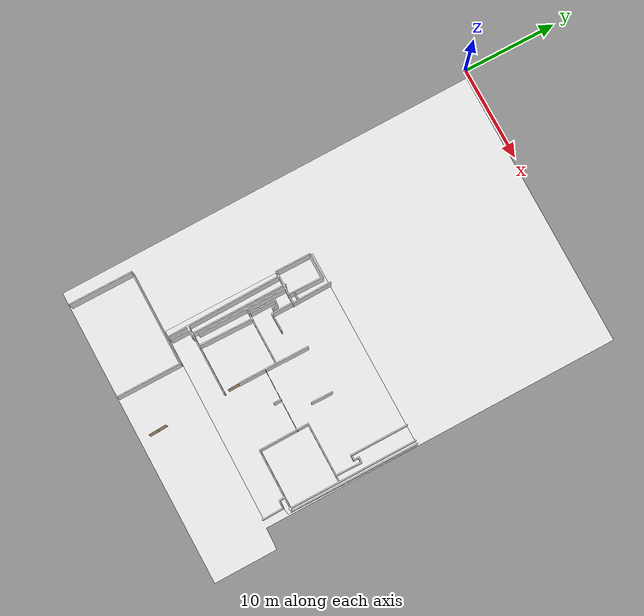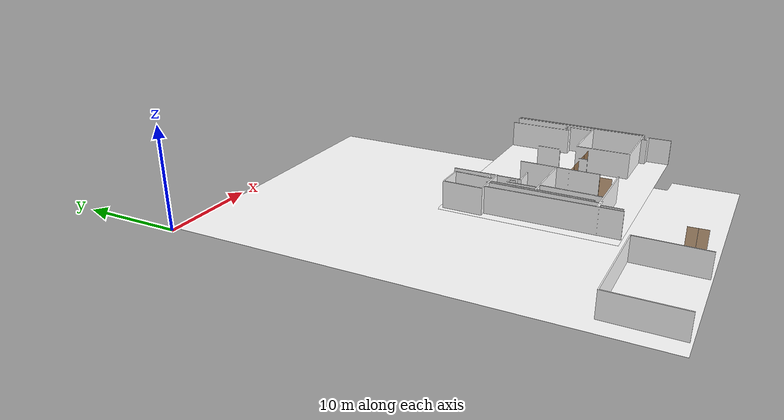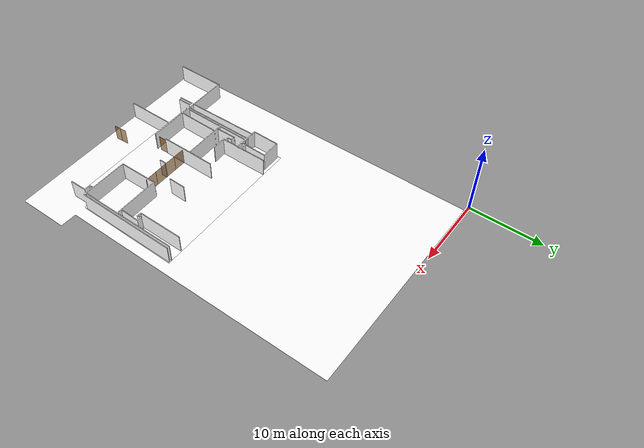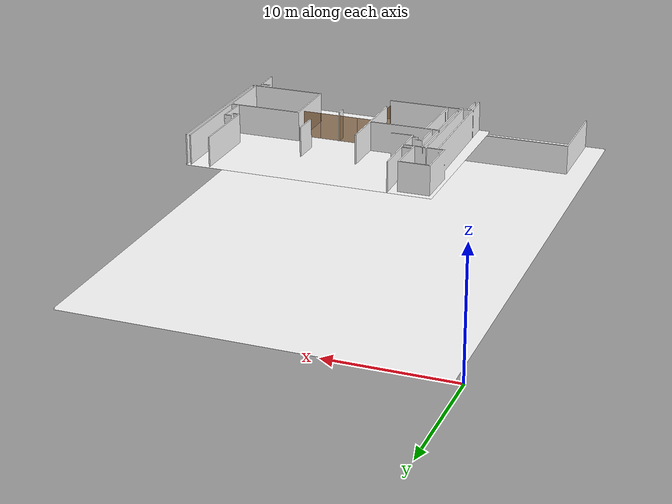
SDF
<sdf version="1.7">
 <world name="sim_world">
  <physics name="10ms" type="ode">
   <max_step_size>0.01</max_step_size>
   <real_time_factor>1.0</real_time_factor>
  </physics>
  <plugin filename="gz-sim-physics-system" name="gz::sim::systems::Physics"/>
  <plugin filename="gz-sim-user-commands-system" name="gz::sim::systems::UserCommands"/>
  <plugin filename="gz-sim-scene-broadcaster-system" name="gz::sim::systems::SceneBroadcaster"/>
  <plugin filename="libdoor.so" name="door"/>
  <plugin filename="liblift.so" name="lift"/>
  <scene><ambient>1 1 1</ambient><background>0.8 0.8 0.8</background><grid>false</grid></scene>
  <include><name>floor_L1_instance</name><uri>model://vamoaver_L1</uri></include>
  <include><name>floor_L2_instance</name><uri>model://vamoaver_L2</uri><pose>0 0 3.0 0 0 0</pose></include>
  <light type="directional" name="sun">
   <pose>0 0 10 0 0 0</pose>
   <diffuse>1 1 1 1</diffuse>
   <specular>0.2 0.2 0.2 1</specular>
   <attenuation>
    <range>1000</range>
    <constant>0.09</constant>
    <linear>0.001</linear>
    <quadratic>0.001</quadratic>
   </attenuation>
   <direction>-0.5 0.1 -0.9</direction>
  </light>
  <model name="pd">
   <pose>22.239033747237585 -31.30326909769599 0.0 0 0 3.1330106389548487</pose>
   <link name="right">
    <pose>0.7583227794030974 0 1.11 0 0 0</pose>
    <visual name="right_visual">
     <geometry><box><size>1.5066455588061949 0.03 2.2</size></box></geometry>
     <material>
      <ambient>0.5 0.25 0 0.6</ambient>
      <diffuse>0.5 0.25 0 0.6</diffuse>
      <pbr><metal><metalness>0.0</metalness></metal></pbr>
     </material>
    </visual>
    <collision name="right_collision">
     <geometry><box><size>1.5066455588061949 0.03 2.2</size></box></geometry>
     <surface><contact><collide_bitmask>0x02</collide_bitmask></contact></surface>
    </collision>
    <inertial>
     <mass>50.0</mass>
     <inertia><ixx>20.17041666666667</ixx><iyy>29.624920166126802</iyy><izz>9.462003499460131</izz></inertia>
    </inertial>
   </link>
   <joint name="right_joint" type="revolute">
    <parent>world</parent>
    <child>right</child>
    <axis><xyz>0 0 -1</xyz><limit><lower>0</lower><upper>1.57</upper></limit></axis>
    <pose>0.7583227794030974 0 0 0 0 0</pose>
   </joint>
   <link name="left">
    <pose>-0.7583227794030974 0 1.11 0 0 0</pose>
    <visual name="left_visual">
     <geometry><box><size>1.5066455588061949 0.03 2.2</size></box></geometry>
     <material>
      <ambient>0.5 0.25 0 0.6</ambient>
      <diffuse>0.5 0.25 0 0.6</diffuse>
      <pbr><metal><metalness>0.0</metalness></metal></pbr>
     </material>
    </visual>
    <collision name="left_collision">
     <geometry><box><size>1.5066455588061949 0.03 2.2</size></box></geometry>
     <surface><contact><collide_bitmask>0x02</collide_bitmask></contact></surface>
    </collision>
    <inertial>
     <mass>50.0</mass>
     <inertia><ixx>20.17041666666667</ixx><iyy>29.624920166126802</iyy><izz>9.462003499460131</izz></inertia>
    </inertial>
   </link>
   <joint name="left_joint" type="revolute">
    <parent>world</parent>
    <child>left</child>
    <axis><xyz>0 0 -1</xyz><limit><lower>-1.57</lower><upper>0</upper></limit></axis>
    <pose>-0.7583227794030974 0 0 0 0 0</pose>
   </joint>
   <plugin name="register_component" filename="libregister_component.so">
    <component name="Door">
     <v_max_door>0.5</v_max_door>
     <a_max_door>0.3</a_max_door>
     <a_nom_door>0.15</a_nom_door>
     <dx_min_door>0.01</dx_min_door>
     <f_max_door>500.0</f_max_door>
     <ros_interface>true</ros_interface>
     <door name="pd" type="DoubleSwingDoor" left_joint_name="left_joint" right_joint_name="right_joint"/>
    </component>
   </plugin>
  </model>
  <model name="pe">
   <pose>19.059718336665608 -31.292579740426334 0.0 0 0 -3.1261976318779796</pose>
   <link name="right">
    <pose>0.7699244835898825 0 1.11 0 0 0</pose>
    <visual name="right_visual">
     <geometry><box><size>1.529848967179765 0.03 2.2</size></box></geometry>
     <material>
      <ambient>0.5 0.25 0 0.6</ambient>
      <diffuse>0.5 0.25 0 0.6</diffuse>
      <pbr><metal><metalness>0.0</metalness></metal></pbr>
     </material>
    </visual>
    <collision name="right_collision">
     <geometry><box><size>1.529848967179765 0.03 2.2</size></box></geometry>
     <surface><contact><collide_bitmask>0x02</collide_bitmask></contact></surface>
    </collision>
    <inertial>
     <mass>50.0</mass>
     <inertia><ixx>20.17041666666667</ixx><iyy>29.918491093254147</iyy><izz>9.755574426587476</izz></inertia>
    </inertial>
   </link>
   <joint name="right_joint" type="revolute">
    <parent>world</parent>
    <child>right</child>
    <axis><xyz>0 0 -1</xyz><limit><lower>0</lower><upper>1.57</upper></limit></axis>
    <pose>0.7699244835898825 0 0 0 0 0</pose>
   </joint>
   <link name="left">
    <pose>-0.7699244835898825 0 1.11 0 0 0</pose>
    <visual name="left_visual">
     <geometry><box><size>1.529848967179765 0.03 2.2</size></box></geometry>
     <material>
      <ambient>0.5 0.25 0 0.6</ambient>
      <diffuse>0.5 0.25 0 0.6</diffuse>
      <pbr><metal><metalness>0.0</metalness></metal></pbr>
     </material>
    </visual>
    <collision name="left_collision">
     <geometry><box><size>1.529848967179765 0.03 2.2</size></box></geometry>
     <surface><contact><collide_bitmask>0x02</collide_bitmask></contact></surface>
    </collision>
    <inertial>
     <mass>50.0</mass>
     <inertia><ixx>20.17041666666667</ixx><iyy>29.918491093254147</iyy><izz>9.755574426587476</izz></inertia>
    </inertial>
   </link>
   <joint name="left_joint" type="revolute">
    <parent>world</parent>
    <child>left</child>
    <axis><xyz>0 0 -1</xyz><limit><lower>-1.57</lower><upper>0</upper></limit></axis>
    <pose>-0.7699244835898825 0 0 0 0 0</pose>
   </joint>
   <plugin name="register_component" filename="libregister_component.so">
    <component name="Door">
     <v_max_door>0.5</v_max_door>
     <a_max_door>0.3</a_max_door>
     <a_nom_door>0.15</a_nom_door>
     <dx_min_door>0.01</dx_min_door>
     <f_max_door>500.0</f_max_door>
     <ros_interface>true</ros_interface>
     <door name="pe" type="DoubleSwingDoor" left_joint_name="left_joint" right_joint_name="right_joint"/>
    </component>
   </plugin>
  </model>
  <model name="pf">
   <pose>17.344819400970803 -42.95994103223671 0.0 0 0 -1.521286940058024</pose>
   <link name="right">
    <pose>0.4655277544687605 0 1.11 0 0 0</pose>
    <visual name="right_visual">
     <geometry><box><size>0.921055508937521 0.03 2.2</size></box></geometry>
     <material>
      <ambient>0.5 0.25 0 0.6</ambient>
      <diffuse>0.5 0.25 0 0.6</diffuse>
      <pbr><metal><metalness>0.0</metalness></metal></pbr>
     </material>
    </visual>
    <collision name="right_collision">
     <geometry><box><size>0.921055508937521 0.03 2.2</size></box></geometry>
     <surface><contact><collide_bitmask>0x02</collide_bitmask></contact></surface>
    </collision>
    <inertial>
     <mass>50.0</mass>
     <inertia><ixx>20.17041666666667</ixx><iyy>23.701430210600655</iyy><izz>3.5385135439339828</izz></inertia>
    </inertial>
   </link>
   <joint name="right_joint" type="revolute">
    <parent>world</parent>
    <child>right</child>
    <axis><xyz>0 0 -1</xyz><limit><lower>0</lower><upper>1.57</upper></limit></axis>
    <pose>0.4655277544687605 0 0 0 0 0</pose>
   </joint>
   <link name="left">
    <pose>-0.4655277544687605 0 1.11 0 0 0</pose>
    <visual name="left_visual">
     <geometry><box><size>0.921055508937521 0.03 2.2</size></box></geometry>
     <material>
      <ambient>0.5 0.25 0 0.6</ambient>
      <diffuse>0.5 0.25 0 0.6</diffuse>
      <pbr><metal><metalness>0.0</metalness></metal></pbr>
     </material>
    </visual>
    <collision name="left_collision">
     <geometry><box><size>0.921055508937521 0.03 2.2</size></box></geometry>
     <surface><contact><collide_bitmask>0x02</collide_bitmask></contact></surface>
    </collision>
    <inertial>
     <mass>50.0</mass>
     <inertia><ixx>20.17041666666667</ixx><iyy>23.701430210600655</iyy><izz>3.5385135439339828</izz></inertia>
    </inertial>
   </link>
   <joint name="left_joint" type="revolute">
    <parent>world</parent>
    <child>left</child>
    <axis><xyz>0 0 -1</xyz><limit><lower>-1.57</lower><upper>0</upper></limit></axis>
    <pose>-0.4655277544687605 0 0 0 0 0</pose>
   </joint>
   <plugin name="register_component" filename="libregister_component.so">
    <component name="Door">
     <v_max_door>0.5</v_max_door>
     <a_max_door>0.3</a_max_door>
     <a_nom_door>0.15</a_nom_door>
     <dx_min_door>0.01</dx_min_door>
     <f_max_door>500.0</f_max_door>
     <ros_interface>true</ros_interface>
     <door name="pf" type="DoubleSwingDoor" left_joint_name="left_joint" right_joint_name="right_joint"/>
    </component>
   </plugin>
  </model>
  <model name="pg">
   <pose>17.475961428283842 -34.64126924803753 0.0 0 0 -1.544138977263344</pose>
   <link name="right">
    <pose>0 0 1.11 0 0 0</pose>
    <visual name="right_visual">
     <geometry><box><size>1.1220816652032701 0.03 2.2</size></box></geometry>
     <material>
      <ambient>0.5 0.25 0 0.6</ambient>
      <diffuse>0.5 0.25 0 0.6</diffuse>
      <pbr><metal><metalness>0.0</metalness></metal></pbr>
     </material>
    </visual>
    <collision name="right_collision">
     <geometry><box><size>1.1220816652032701 0.03 2.2</size></box></geometry>
     <surface><contact><collide_bitmask>0x02</collide_bitmask></contact></surface>
    </collision>
    <inertial>
     <mass>50.0</mass>
     <inertia><ixx>20.17041666666667</ixx><iyy>25.412780264105603</iyy><izz>5.249863597438932</izz></inertia>
    </inertial>
   </link>
   <joint name="right_joint" type="revolute">
    <parent>world</parent>
    <child>right</child>
    <axis><xyz>0 0 1</xyz><limit><lower>0</lower><upper>1.57</upper></limit></axis>
    <pose>0.5660408326016351 0 0 0 0 0</pose>
   </joint>
   <plugin name="register_component" filename="libregister_component.so">
    <component name="Door">
     <v_max_door>0.5</v_max_door>
     <a_max_door>0.3</a_max_door>
     <a_nom_door>0.15</a_nom_door>
     <dx_min_door>0.01</dx_min_door>
     <f_max_door>500.0</f_max_door>
     <ros_interface>true</ros_interface>
     <door name="pg" type="SwingDoor" left_joint_name="empty_joint" right_joint_name="right_joint"/>
    </component>
   </plugin>
  </model>
  <model name="pa">
   <pose>22.259642353104866 -31.367903908425042 3.0 0 0 3.139880470327144</pose>
   <link name="right">
    <pose>0.823672234476166 0 1.11 0 0 0</pose>
    <visual name="right_visual">
     <geometry><box><size>1.637344468952332 0.03 2.2</size></box></geometry>
     <material>
      <ambient>0.5 0.25 0 0.6</ambient>
      <diffuse>0.5 0.25 0 0.6</diffuse>
      <pbr><metal><metalness>0.0</metalness></metal></pbr>
     </material>
    </visual>
    <collision name="right_collision">
     <geometry><box><size>1.637344468952332 0.03 2.2</size></box></geometry>
     <surface><contact><collide_bitmask>0x02</collide_bitmask></contact></surface>
    </collision>
    <inertial>
     <mass>50.0</mass>
     <inertia><ixx>20.17041666666667</ixx><iyy>31.337070458369983</iyy><izz>11.174153791703311</izz></inertia>
    </inertial>
   </link>
   <joint name="right_joint" type="revolute">
    <parent>world</parent>
    <child>right</child>
    <axis><xyz>0 0 -1</xyz><limit><lower>0</lower><upper>1.57</upper></limit></axis>
    <pose>0.823672234476166 0 0 0 0 0</pose>
   </joint>
   <link name="left">
    <pose>-0.823672234476166 0 1.11 0 0 0</pose>
    <visual name="left_visual">
     <geometry><box><size>1.637344468952332 0.03 2.2</size></box></geometry>
     <material>
      <ambient>0.5 0.25 0 0.6</ambient>
      <diffuse>0.5 0.25 0 0.6</diffuse>
      <pbr><metal><metalness>0.0</metalness></metal></pbr>
     </material>
    </visual>
    <collision name="left_collision">
     <geometry><box><size>1.637344468952332 0.03 2.2</size></box></geometry>
     <surface><contact><collide_bitmask>0x02</collide_bitmask></contact></surface>
    </collision>
    <inertial>
     <mass>50.0</mass>
     <inertia><ixx>20.17041666666667</ixx><iyy>31.337070458369983</iyy><izz>11.174153791703311</izz></inertia>
    </inertial>
   </link>
   <joint name="left_joint" type="revolute">
    <parent>world</parent>
    <child>left</child>
    <axis><xyz>0 0 -1</xyz><limit><lower>-1.57</lower><upper>0</upper></limit></axis>
    <pose>-0.823672234476166 0 0 0 0 0</pose>
   </joint>
   <plugin name="register_component" filename="libregister_component.so">
    <component name="Door">
     <v_max_door>0.5</v_max_door>
     <a_max_door>0.3</a_max_door>
     <a_nom_door>0.15</a_nom_door>
     <dx_min_door>0.01</dx_min_door>
     <f_max_door>500.0</f_max_door>
     <ros_interface>true</ros_interface>
     <door name="pa" type="DoubleSwingDoor" left_joint_name="left_joint" right_joint_name="right_joint"/>
    </component>
   </plugin>
  </model>
  <model name="pb">
   <pose>17.459700466782632 -34.681898617500565 3.0 0 0 -1.553469970732994</pose>
   <link name="right">
    <pose>0 0 1.11 0 0 0</pose>
    <visual name="right_visual">
     <geometry><box><size>1.1367853899503078 0.03 2.2</size></box></geometry>
     <material>
      <ambient>0.5 0.25 0 0.6</ambient>
      <diffuse>0.5 0.25 0 0.6</diffuse>
      <pbr><metal><metalness>0.0</metalness></metal></pbr>
     </material>
    </visual>
    <collision name="right_collision">
     <geometry><box><size>1.1367853899503078 0.03 2.2</size></box></geometry>
     <surface><contact><collide_bitmask>0x02</collide_bitmask></contact></surface>
    </collision>
    <inertial>
     <mass>50.0</mass>
     <inertia><ixx>20.17041666666667</ixx><iyy>25.551170928351976</iyy><izz>5.388254261685305</izz></inertia>
    </inertial>
   </link>
   <joint name="right_joint" type="revolute">
    <parent>world</parent>
    <child>right</child>
    <axis><xyz>0 0 1</xyz><limit><lower>0</lower><upper>1.57</upper></limit></axis>
    <pose>0.5733926949751539 0 0 0 0 0</pose>
   </joint>
   <plugin name="register_component" filename="libregister_component.so">
    <component name="Door">
     <v_max_door>0.5</v_max_door>
     <a_max_door>0.3</a_max_door>
     <a_nom_door>0.15</a_nom_door>
     <dx_min_door>0.01</dx_min_door>
     <f_max_door>500.0</f_max_door>
     <ros_interface>true</ros_interface>
     <door name="pb" type="SwingDoor" left_joint_name="empty_joint" right_joint_name="right_joint"/>
    </component>
   </plugin>
  </model>
  <model name="pc">
   <pose>19.02371584225125 -31.350121255122694 3.0 0 0 3.132174421783648</pose>
   <link name="right">
    <pose>0.7943274576670907 0 1.11 0 0 0</pose>
    <visual name="right_visual">
     <geometry><box><size>1.5786549153341813 0.03 2.2</size></box></geometry>
     <material>
      <ambient>0.5 0.25 0 0.6</ambient>
      <diffuse>0.5 0.25 0 0.6</diffuse>
      <pbr><metal><metalness>0.0</metalness></metal></pbr>
     </material>
    </visual>
    <collision name="right_collision">
     <geometry><box><size>1.5786549153341813 0.03 2.2</size></box></geometry>
     <surface><contact><collide_bitmask>0x02</collide_bitmask></contact></surface>
    </collision>
    <inertial>
     <mass>50.0</mass>
     <inertia><ixx>20.17041666666667</ixx><iyy>30.55063059045322</iyy><izz>10.387713923786547</izz></inertia>
    </inertial>
   </link>
   <joint name="right_joint" type="revolute">
    <parent>world</parent>
    <child>right</child>
    <axis><xyz>0 0 -1</xyz><limit><lower>0</lower><upper>1.57</upper></limit></axis>
    <pose>0.7943274576670907 0 0 0 0 0</pose>
   </joint>
   <link name="left">
    <pose>-0.7943274576670907 0 1.11 0 0 0</pose>
    <visual name="left_visual">
     <geometry><box><size>1.5786549153341813 0.03 2.2</size></box></geometry>
     <material>
      <ambient>0.5 0.25 0 0.6</ambient>
      <diffuse>0.5 0.25 0 0.6</diffuse>
      <pbr><metal><metalness>0.0</metalness></metal></pbr>
     </material>
    </visual>
    <collision name="left_collision">
     <geometry><box><size>1.5786549153341813 0.03 2.2</size></box></geometry>
     <surface><contact><collide_bitmask>0x02</collide_bitmask></contact></surface>
    </collision>
    <inertial>
     <mass>50.0</mass>
     <inertia><ixx>20.17041666666667</ixx><iyy>30.55063059045322</iyy><izz>10.387713923786547</izz></inertia>
    </inertial>
   </link>
   <joint name="left_joint" type="revolute">
    <parent>world</parent>
    <child>left</child>
    <axis><xyz>0 0 -1</xyz><limit><lower>-1.57</lower><upper>0</upper></limit></axis>
    <pose>-0.7943274576670907 0 0 0 0 0</pose>
   </joint>
   <plugin name="register_component" filename="libregister_component.so">
    <component name="Door">
     <v_max_door>0.5</v_max_door>
     <a_max_door>0.3</a_max_door>
     <a_nom_door>0.15</a_nom_door>
     <dx_min_door>0.01</dx_min_door>
     <f_max_door>500.0</f_max_door>
     <ros_interface>true</ros_interface>
     <door name="pc" type="DoubleSwingDoor" left_joint_name="left_joint" right_joint_name="right_joint"/>
    </component>
   </plugin>
  </model>
  <plugin name="register_component" filename="libregister_component.so"><component name="Chargers"/></plugin>
 </world>
</sdf>

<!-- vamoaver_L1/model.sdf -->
<sdf version="1.7">
  <model name="vamoaver_L1">
    <static>true</static>
    <link name="floor_1">
      <visual name="visual">
        <geometry>
          <mesh>
            <uri>model://vamoaver_L1/meshes/floor_1.obj</uri>
          </mesh>
        </geometry>
        <material>
          <diffuse>1.0 1.0 1.0</diffuse>
          <specular>0.1 0.1 0.1</specular>
          <pbr>
            <metal>
              <metalness>0.0</metalness>
              <albedo_map>model://vamoaver_L1/meshes/blue_linoleum.png</albedo_map>
            </metal>
          </pbr>
          <script>
            <uri>model://vamoaver_L1/meshes/</uri>
            <name>floor_1_Diffuse</name>
          </script>
        </material>
      </visual>
      <collision name="collision">
        <geometry>
          <mesh>
            <uri>model://vamoaver_L1/meshes/floor_1.obj</uri>
          </mesh>
        </geometry>
        <surface>
          <contact>
            <collide_bitmask>0x01</collide_bitmask>
          </contact>
        </surface>
      </collision>
    </link>
    <link name="wall_1">
      <visual name="wall_1">
        <geometry>
          <mesh>
            <uri>model://vamoaver_L1/meshes/wall_1.obj</uri>
          </mesh>
        </geometry>
        <transparency>0.0</transparency>
        <material>
          <diffuse>1.0 1.0 1.0</diffuse>
          <specular>0.1 0.1 0.1</specular>
          <pbr>
            <metal>
              <metalness>0.0</metalness>
              <albedo_map>model://vamoaver_L1/meshes/default.png</albedo_map>
            </metal>
          </pbr>
          <script>
            <uri>model://vamoaver_L1/meshes/</uri>
            <name>wall_1_Diffuse</name>
          </script>
        </material>
      </visual>
      <collision name="collision">
        <geometry>
          <mesh>
            <uri>model://vamoaver_L1/meshes/wall_1.obj</uri>
          </mesh>
        </geometry>
        <surface>
          <contact>
            <collide_bitmask>0x01</collide_bitmask>
          </contact>
        </surface>
      </collision>
      <pose>2.762796399984574 -44.90720372962892 0 0 0 0</pose>
    </link>
  </model>
</sdf>

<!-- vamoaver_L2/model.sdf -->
<sdf version="1.7">
  <model name="vamoaver_L2">
    <static>true</static>
    <link name="floor_1">
      <visual name="visual">
        <geometry>
          <mesh>
            <uri>model://vamoaver_L2/meshes/floor_1.obj</uri>
          </mesh>
        </geometry>
        <material>
          <diffuse>1.0 1.0 1.0</diffuse>
          <specular>0.1 0.1 0.1</specular>
          <pbr>
            <metal>
              <metalness>0.0</metalness>
              <albedo_map>model://vamoaver_L2/meshes/blue_linoleum.png</albedo_map>
            </metal>
          </pbr>
          <script>
            <uri>model://vamoaver_L2/meshes/</uri>
            <name>floor_1_Diffuse</name>
          </script>
        </material>
      </visual>
      <collision name="collision">
        <geometry>
          <mesh>
            <uri>model://vamoaver_L2/meshes/floor_1.obj</uri>
          </mesh>
        </geometry>
        <surface>
          <contact>
            <collide_bitmask>0x01</collide_bitmask>
          </contact>
        </surface>
      </collision>
    </link>
    <link name="wall_1">
      <visual name="wall_1">
        <geometry>
          <mesh>
            <uri>model://vamoaver_L2/meshes/wall_1.obj</uri>
          </mesh>
        </geometry>
        <transparency>0.0</transparency>
        <material>
          <diffuse>1.0 1.0 1.0</diffuse>
          <specular>0.1 0.1 0.1</specular>
          <pbr>
            <metal>
              <metalness>0.0</metalness>
              <albedo_map>model://vamoaver_L2/meshes/default.png</albedo_map>
            </metal>
          </pbr>
          <script>
            <uri>model://vamoaver_L2/meshes/</uri>
            <name>wall_1_Diffuse</name>
          </script>
        </material>
      </visual>
      <collision name="collision">
        <geometry>
          <mesh>
            <uri>model://vamoaver_L2/meshes/wall_1.obj</uri>
          </mesh>
        </geometry>
        <surface>
          <contact>
            <collide_bitmask>0x01</collide_bitmask>
          </contact>
        </surface>
      </collision>
      <pose>9.756854892962743 -38.04942993552152 0 0 0 0</pose>
    </link>
  </model>
</sdf>
